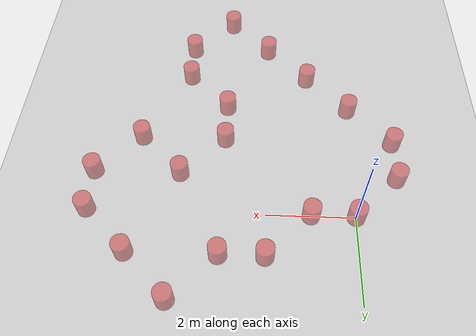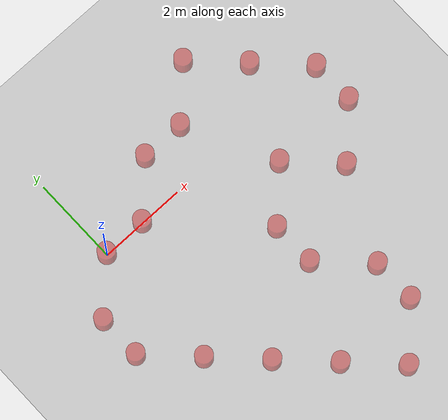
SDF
<?xml version="1.0" ?>

<sdf version="1.5">
  <!-- We use a custom world for the robot so that the camera angle is launched correctly -->
  <world name="diff_drive_world">

    <!-- Add a ground plane -->
    <include>
        <uri>model://ground_plane</uri>
        <material>
            <script>
                <uri>file://media/materials/scripts/gazebo.material</uri>
            </script>
        </material>
    </include>

    <!-- Global light source -->
    <include>
      <uri>model://sun</uri>
    </include>

    <!-- Waypoints (visual) -->
    <include>
      <uri>model://waypoint</uri>
      <pose>0 0 0 0 0 0</pose>
    </include>
    <include>
      <uri>model://waypoint</uri>
      <pose>1 0 0 0 0 0</pose>
    </include>
    <include>
      <uri>model://waypoint</uri>
      <pose>2 1 0 0 0 0</pose>
    </include>
    <include>
      <uri>model://waypoint</uri>
      <pose>3 1 0 0 0 0</pose>
    </include>
    <include>
      <uri>model://waypoint</uri>
      <pose>4 2 0 0 0 0</pose>
    </include>
    <include>
      <uri>model://waypoint</uri>
      <pose>5 1 0 0 0 0</pose>
    </include>
    <include>
      <uri>model://waypoint</uri>
      <pose>6 0 0 0 0 0</pose>
    </include>
    <include>
      <uri>model://waypoint</uri>
      <pose>6 -1 0 0 0 0</pose>
    </include>
    <include>
      <uri>model://waypoint</uri>
      <pose>5 -2 0 0 0 0</pose>
    </include>
    <include>
      <uri>model://waypoint</uri>
      <pose>4 -1 0 0 0 0</pose>
    </include>
    <include>
      <uri>model://waypoint</uri>
      <pose>3 -2 0 0 0 0</pose>
    </include>
    <include>
      <uri>model://waypoint</uri>
      <pose>3 -3 0 0 0 0</pose>
    </include>
    <include>
      <uri>model://waypoint</uri>
      <pose>4 -4 0 0 0 0</pose>
    </include>
    <include>
      <uri>model://waypoint</uri>
      <pose>4 -5 0 0 0 0</pose>
    </include>
    <include>
      <uri>model://waypoint</uri>
      <pose>3 -6 0 0 0 0</pose>
    </include>
    <include>
      <uri>model://waypoint</uri>
      <pose>2 -5 0 0 0 0</pose>
    </include>
    <include>
      <uri>model://waypoint</uri>
      <pose>1 -4 0 0 0 0</pose>
    </include>
    <include>
      <uri>model://waypoint</uri>
      <pose>0 -3 0 0 0 0</pose>
    </include>
    <include>
      <uri>model://waypoint</uri>
      <pose>-1 -2 0 0 0 0</pose>
    </include>
    <include>
      <uri>model://waypoint</uri>
      <pose>-1 -1 0 0 0 0</pose>
    </include>

    <!-- Set up the solver used for simulation -->
    <physics name="ode_200iters" type="ode">
      <real_time_update_rate>1500</real_time_update_rate>
      <ode>
        <solver>
          <type>quick</type>
          <iters>200</iters>
        </solver>
      </ode>
    </physics>

  </world>
</sdf>

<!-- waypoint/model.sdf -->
<sdf version='1.6'>
  <model name='waypoint'>
    <pose frame=''>0.0 0.0 0.0 0.0 0.0 0.0</pose>
    <link name='w1'>
      <visual name='w1_visual'>
        <pose frame=''>0 0 0 0 0 0</pose>
        <geometry>
          <cylinder>
            <radius>0.2</radius>
            <length>1.0</length>
          </cylinder>
        </geometry>
        <material>
          <script>
            <uri>file://media/materials/scripts/gazebo.material</uri>
            <name>Gazebo/Red</name>
          </script>
          <ambient>0.666667 0.666667 0.498039 1</ambient>
        </material>
        <transparency>0.5</transparency>
      </visual>
      <pose frame=''>0 0 0 0 0 0</pose>
    </link>
    <static>1</static>
  </model>
</sdf>
